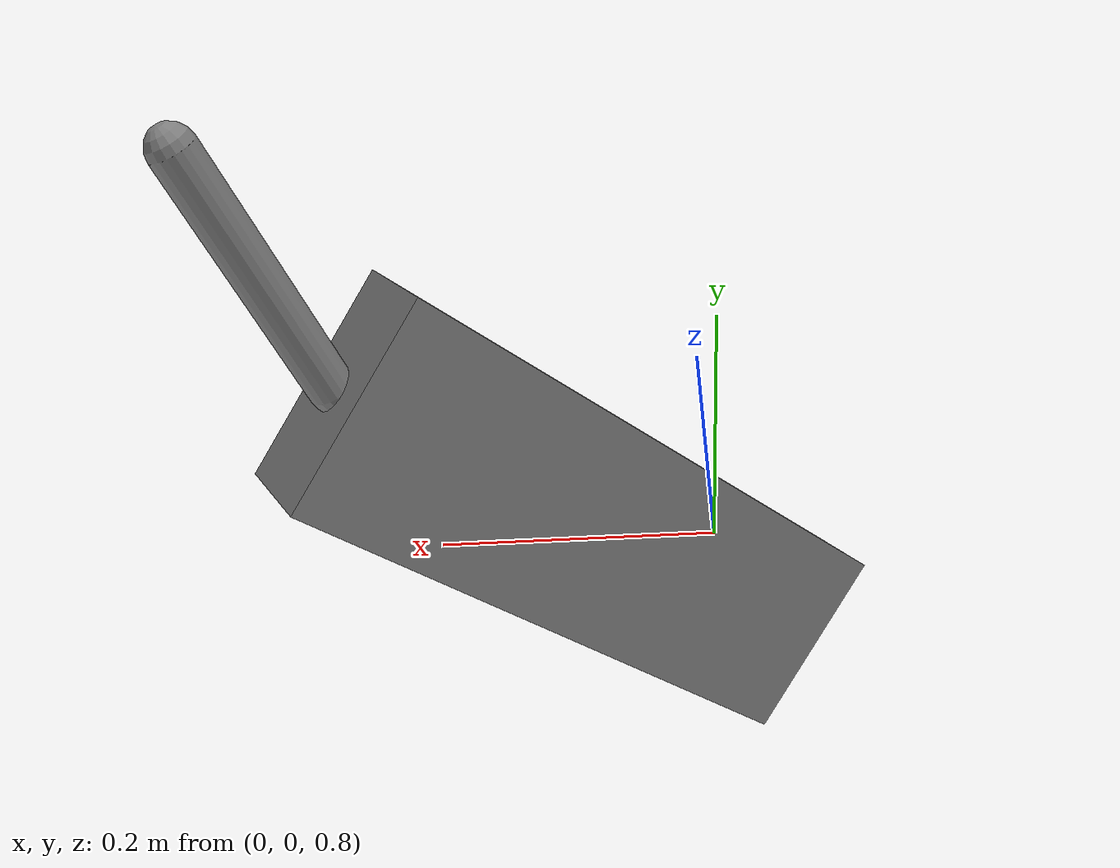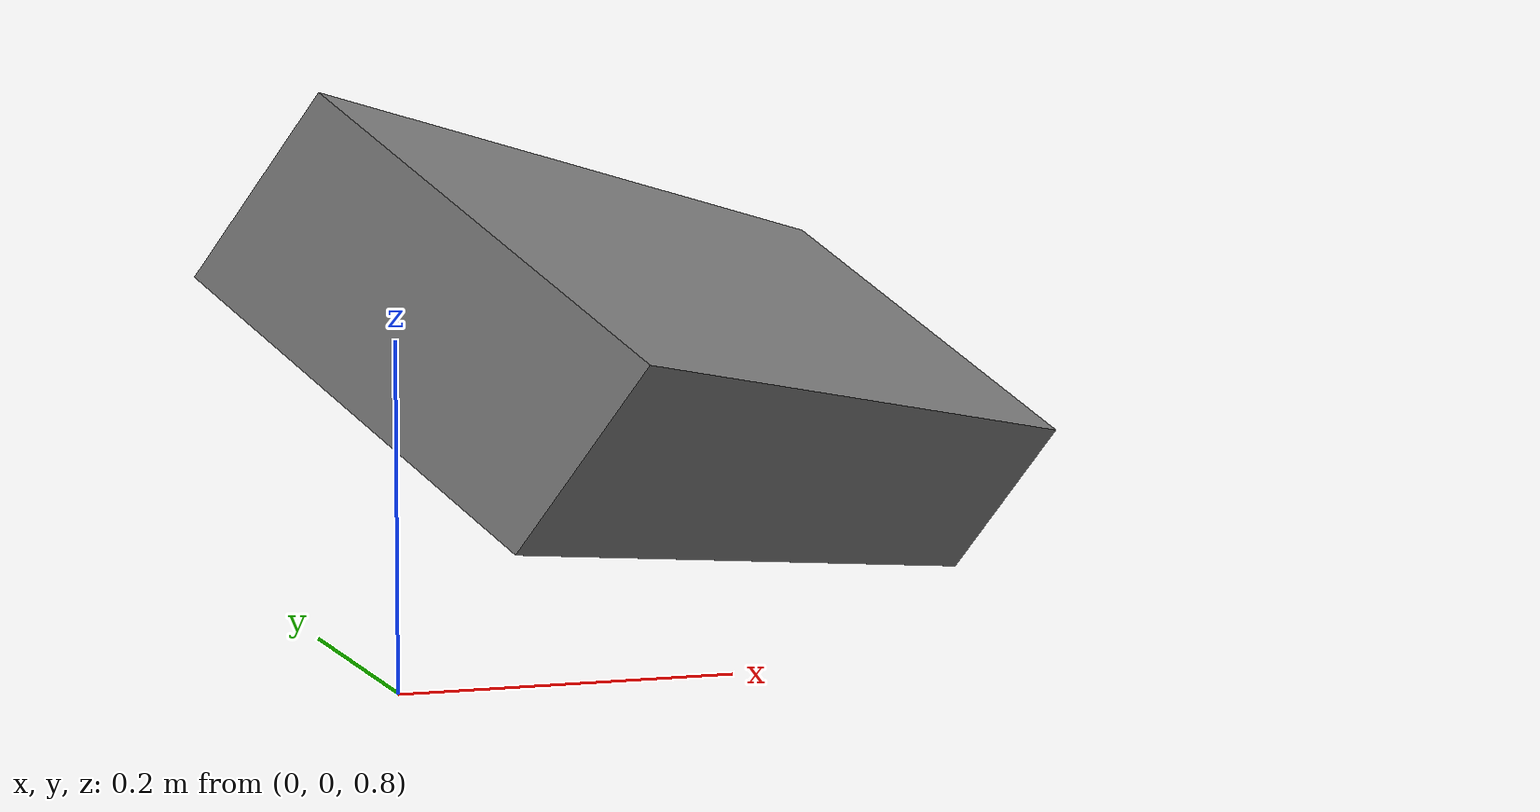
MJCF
<mujoco model="tumble">
  <option timestep="0.001" gravity="0 0 -9.81"/>
  <worldbody>
    <body name="brick" pos="0.1 -0.2 1" euler="20 30 40">
      <freejoint/>
      <geom type="box" size="0.3 0.1 0.05" contype="0" conaffinity="0"/>
      <body name="appendage" pos="0.3 0 0">
        <joint type="hinge" axis="0 0 1" damping="0.01"/>
        <geom type="capsule" fromto="0 0 0 0.2 0.1 0" size="0.02" contype="0" conaffinity="0"/>
      </body>
    </body>
  </worldbody>
</mujoco>
